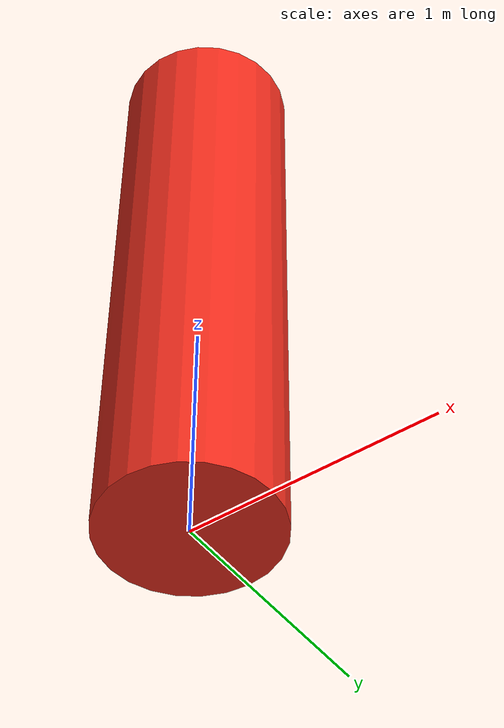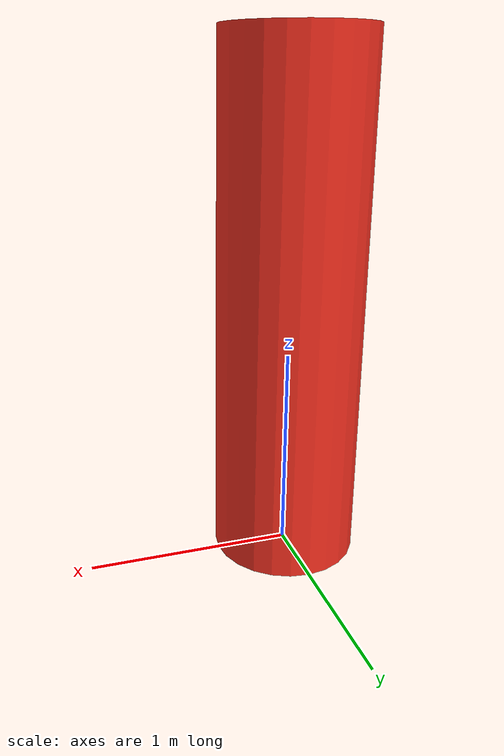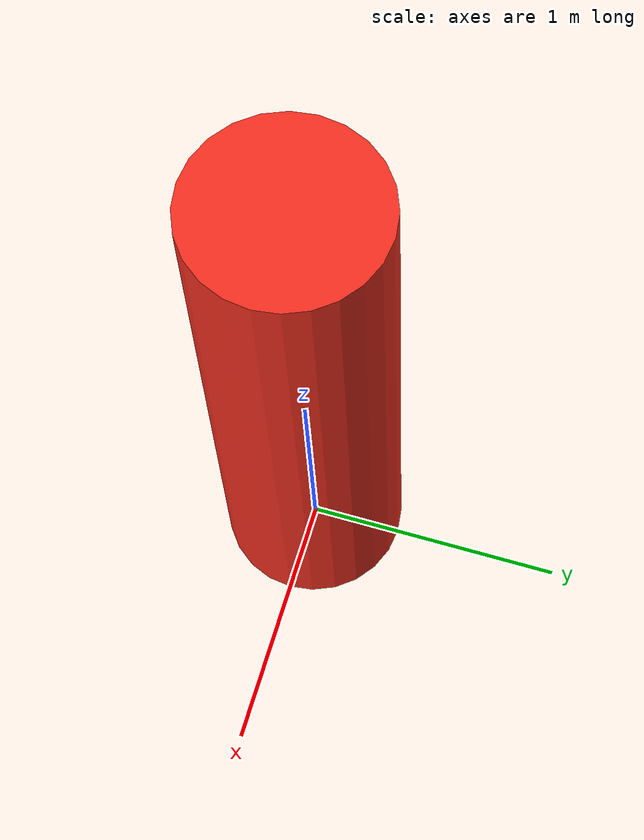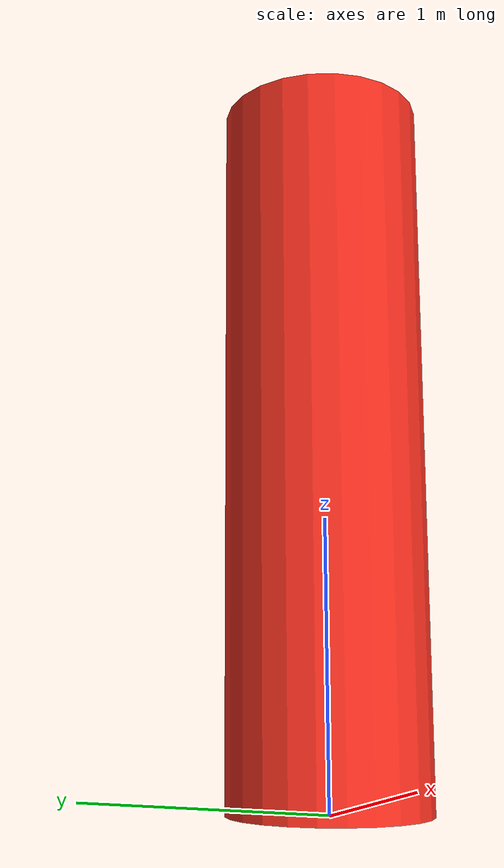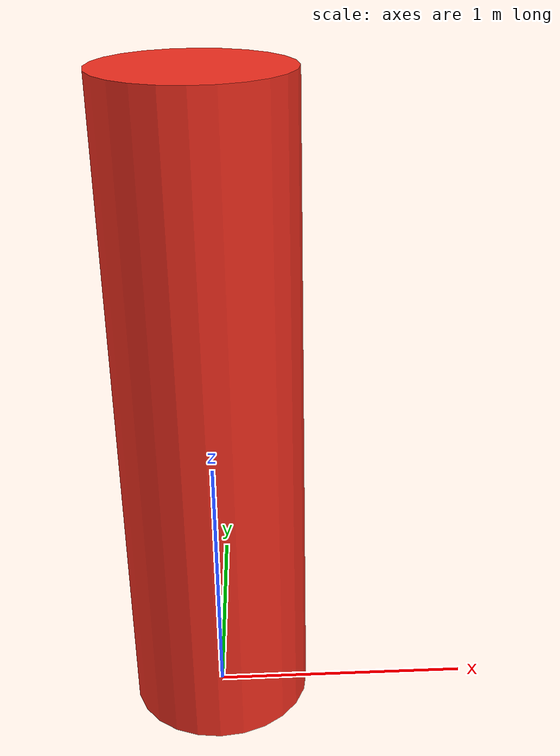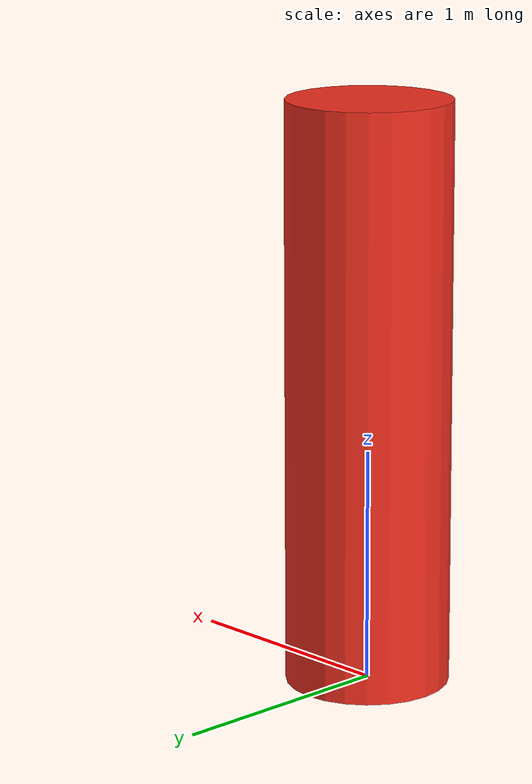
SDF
<?xml version="1.0"?>
<sdf version="1.6">
  <model name="p450_reciprocating_cylinder">
    <static>false</static>
    <allow_auto_disable>false</allow_auto_disable>
    <link name="cylinder_link">
      <pose>0 0 1.25 0 0 0</pose>
      <gravity>false</gravity>
      <kinematic>true</kinematic>
      <inertial>
        <mass>12.0</mass>
        <inertia>
          <ixx>6.6175</ixx>
          <ixy>0</ixy>
          <ixz>0</ixz>
          <iyy>6.6175</iyy>
          <iyz>0</iyz>
          <izz>0.735</izz>
        </inertia>
      </inertial>
      <collision name="cylinder_collision">
        <geometry>
          <cylinder>
            <radius>0.35</radius>
            <length>2.5</length>
          </cylinder>
        </geometry>
        <surface>
          <contact><ode/></contact>
          <friction>
            <ode><mu>1.0</mu><mu2>1.0</mu2></ode>
          </friction>
        </surface>
      </collision>
      <visual name="cylinder_visual">
        <geometry>
          <cylinder>
            <radius>0.35</radius>
            <length>2.5</length>
          </cylinder>
        </geometry>
        <material>
          <ambient>0.75 0.12 0.10 1</ambient>
          <diffuse>0.95 0.18 0.12 1</diffuse>
          <specular>0.15 0.15 0.15 1</specular>
        </material>
      </visual>
    </link>
  </model>
</sdf>
